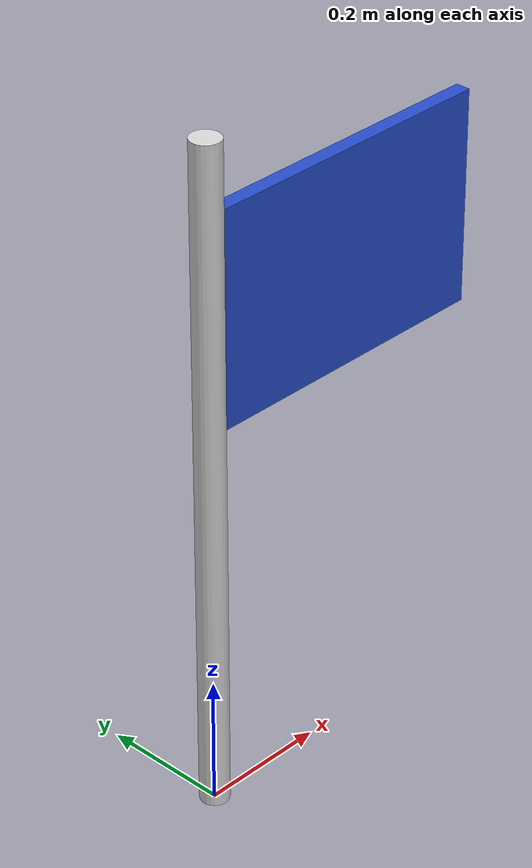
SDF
<?xml version="1.0" ?>
<sdf version="1.5">
  <model name="blue_flag">
    <static>false</static>

    <link name="pole">
      <gravity>0</gravity>
      <pose>0 0 0.525 0 0 0</pose>
      <inertial>
        <mass>0.075</mass>
        <inertia>
          <ixx>0.003</ixx>
          <ixy>0</ixy>
          <ixz>0</ixz>
          <iyy>0.003</iyy>
          <iyz>0</iyz>
          <izz>0.00001</izz>
        </inertia>
      </inertial>
      <collision name="pole_collision">
        <geometry>
          <cylinder>
            <radius>0.0225</radius>
            <length>1.05</length>
          </cylinder>
        </geometry>
      </collision>
      <visual name="pole_visual">
        <geometry>
          <cylinder>
            <radius>0.0225</radius>
            <length>1.05</length>
          </cylinder>
        </geometry>
        <material>
          <ambient>0.75 0.75 0.75 1</ambient>
          <diffuse>0.85 0.85 0.85 1</diffuse>
          <specular>0.2 0.2 0.2 1</specular>
        </material>
      </visual>
    </link>

    <link name="cloth">
      <gravity>0</gravity>
      <pose>0.255 0 0.78 0 0 0</pose>
      <inertial>
        <mass>0.03</mass>
        <inertia>
          <ixx>0.0001</ixx>
          <ixy>0</ixy>
          <ixz>0</ixz>
          <iyy>0.0003</iyy>
          <iyz>0</iyz>
          <izz>0.0003</izz>
        </inertia>
      </inertial>
      <collision name="cloth_collision">
        <geometry>
          <box>
            <size>0.48 0.0225 0.33</size>
          </box>
        </geometry>
      </collision>
      <visual name="cloth_visual">
        <geometry>
          <box>
            <size>0.48 0.0225 0.33</size>
          </box>
        </geometry>
        <material>
          <ambient>0.0 0.16 0.95 1</ambient>
          <diffuse>0.0 0.24 1.0 1</diffuse>
          <specular>0.1 0.1 0.2 1</specular>
          <script>
            <uri>file://media/materials/scripts/gazebo.material</uri>
            <name>Gazebo/Blue</name>
          </script>
        </material>
      </visual>
    </link>

    <joint name="cloth_to_pole" type="fixed">
      <parent>pole</parent>
      <child>cloth</child>
    </joint>
  </model>
</sdf>
